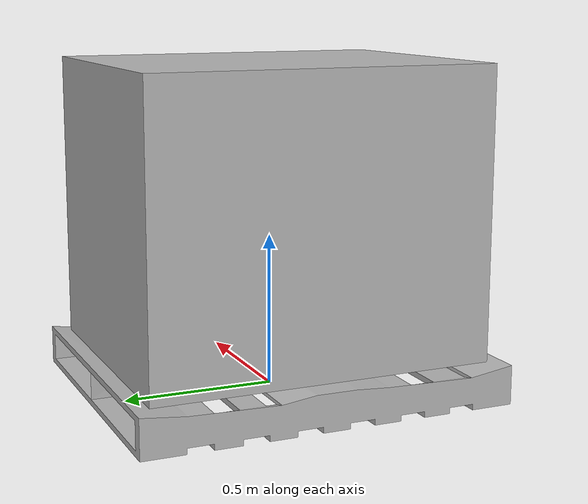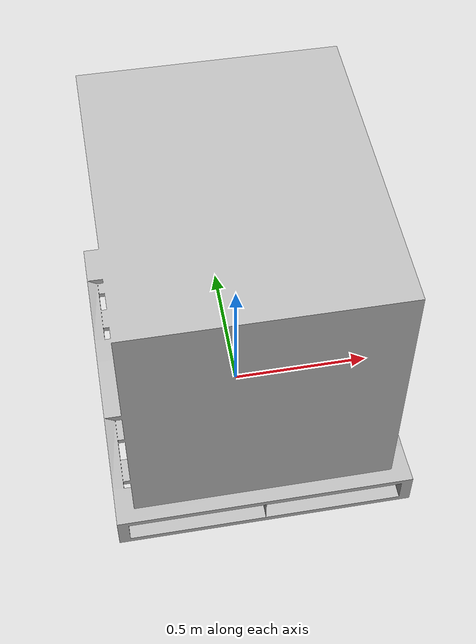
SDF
<?xml version='1.0'?>
<sdf version='1.6'>
  <model name='Crate'>
    <link name='crate'>
      <pose frame=''>0 0 0.535 0 -0 0</pose>
      <inertial>
        <mass>10</mass>
        <inertia>
          <ixx>5</ixx>
          <ixy>0</ixy>
          <ixz>0</ixz>
          <iyy>5</iyy>
          <iyz>0</iyz>
          <izz>5</izz>
        </inertia>
      </inertial>
      <gravity>1</gravity>
      <self_collide>0</self_collide>
      <kinematic>0</kinematic>
      <enable_wind>0</enable_wind>
      <visual name='visual'>
        <pose frame=''>0 0 0 0 0 0</pose>
        <geometry>
          <mesh>
            <uri>model://Crate/meshes/crate_flipped_.dae</uri>
          </mesh>
        </geometry>
        <transparency>0</transparency>
        <cast_shadows>0</cast_shadows>
      </visual>
      <collision name='collision'>
        <laser_retro>0</laser_retro>
        <pose frame=''>0 0 0 0 0 0</pose>
        <geometry>
          <mesh>
            <uri>model://Crate/meshes/crate_flipped_.stl</uri>
          </mesh>
        </geometry>
      </collision>
    </link>
    <static>1</static>
  </model>
</sdf>
